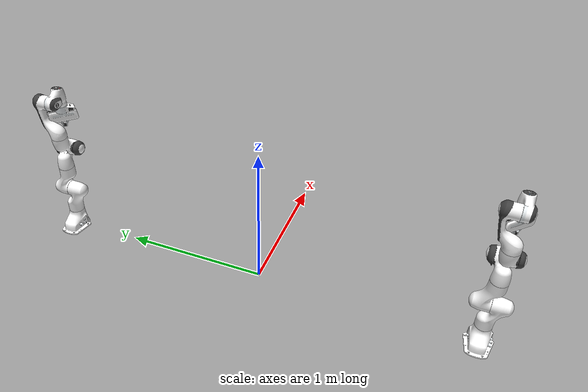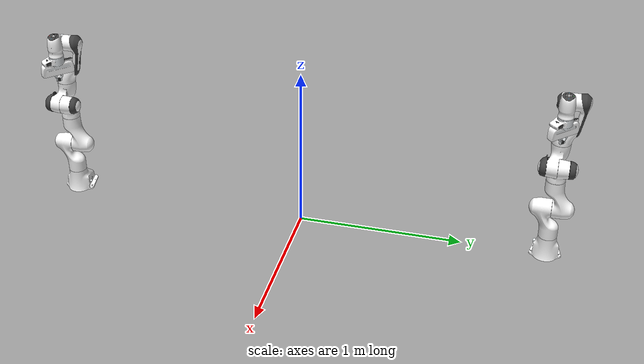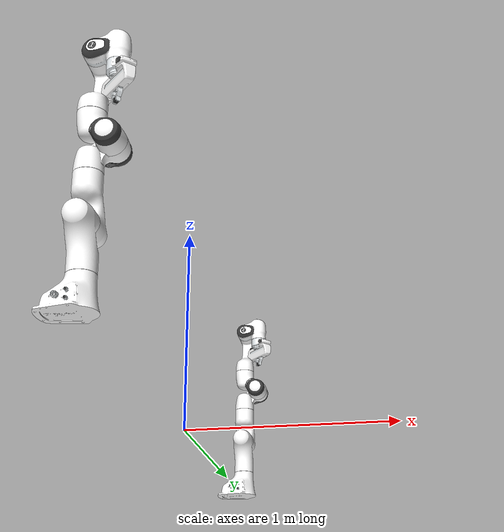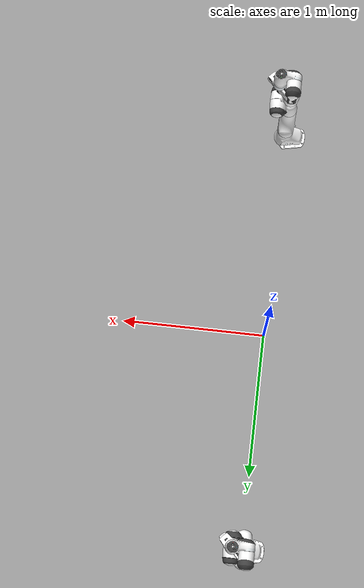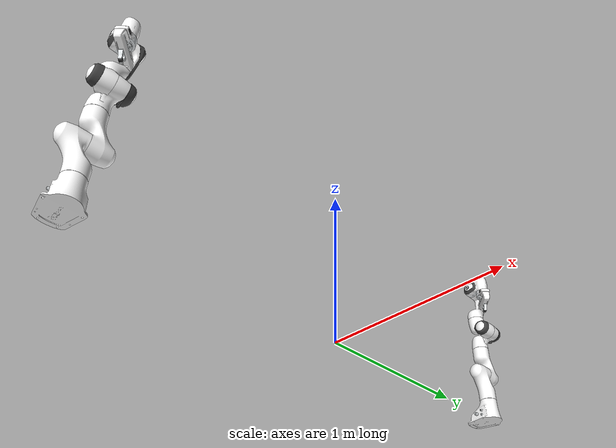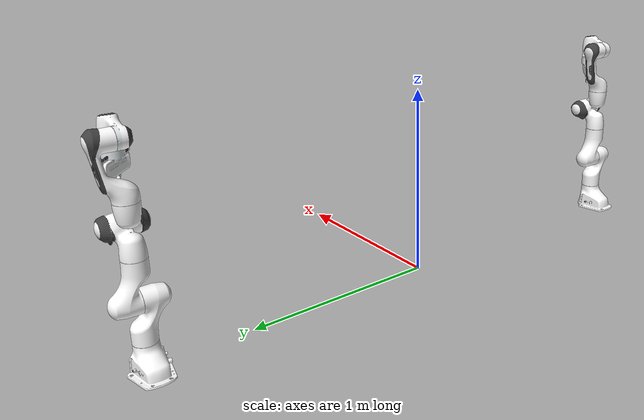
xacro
<?xml version="1.0"?>
<robot xmlns:xacro="http://www.ros.org/wiki/xacro" name="dual_arms">
    <xacro:arg name="left_initial_positions_file"
        default="$(find dual_arm_moveit_config)/config/left_initial_positions.yaml" />
    <xacro:arg name="right_initial_positions_file"
        default="$(find dual_arm_moveit_config)/config/right_initial_positions.yaml" />

    <link name="world"/>
    <!-- Import dual_arms urdf file -->
    <xacro:include filename="$(find dual_arm_moveit_config)/config/panda_macro.xacro" />

    <!-- Left arm -->
    <xacro:panda
        prefix="left_"
        parent="world">
        <origin xyz="0 -1.5 0" rpy="0 0 0" />
    </xacro:panda>

    <!-- Right arm -->
    <xacro:panda
        prefix="right_"
        parent="world">
        <origin xyz="0 1.5 0" rpy="0 0 0" />
    </xacro:panda>

    <!-- Import control_xacro -->
    <xacro:include filename="dual_arms.ros2_control.xacro" />

    <xacro:dual_arms_ros2_control name="FakeSystem" prefix="left_" initial_positions_file="$(arg left_initial_positions_file)"/>
    <xacro:dual_arms_ros2_control name="FakeSystem" prefix="right_" initial_positions_file="$(arg right_initial_positions_file)"/>

</robot>

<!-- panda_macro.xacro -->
<!-- |    This document was autogenerated by xacro from /opt/ros/kinetic/share/moveit_resources/panda_description/urdf/panda.urdf | -->
<!-- |    EDITING THIS FILE BY HAND IS NOT RECOMMENDED                                 | -->
<robot xmlns:xacro="http://www.ros.org/wiki/xacro">
    <xacro:macro name="panda" params="prefix parent *origin">

        <joint name="${prefix}base_joint" type="fixed">
            <xacro:insert_block name="origin" />
            <parent link="${parent}" />
            <child link="${prefix}panda_link0" />
        </joint>

        <link name="${prefix}panda_link0">
            <visual>
                <geometry>
                    <mesh filename="package://moveit_resources_panda_description/meshes/visual/link0.dae" />
                </geometry>
            </visual>
            <collision>
                <geometry>
                    <mesh filename="package://moveit_resources_panda_description/meshes/collision/link0.stl" />
                </geometry>
            </collision>
        </link>
        <link name="${prefix}panda_link1">
            <visual>
                <geometry>
                    <mesh filename="package://moveit_resources_panda_description/meshes/visual/link1.dae" />
                </geometry>
            </visual>
            <collision>
                <geometry>
                    <mesh filename="package://moveit_resources_panda_description/meshes/collision/link1.stl" />
                </geometry>
            </collision>
        </link>
        <joint name="${prefix}panda_joint1" type="revolute">
            <safety_controller k_position="100.0" k_velocity="40.0" soft_lower_limit="-2.8973" soft_upper_limit="2.8973" />
            <origin rpy="0 0 0" xyz="0 0 0.333" />
            <parent link="${prefix}panda_link0" />
            <child link="${prefix}panda_link1" />
            <axis xyz="0 0 1" />
            <limit effort="87" lower="-2.9671" upper="2.9671" velocity="2.3925" />
        </joint>
        <link name="${prefix}panda_link2">
            <visual>
                <geometry>
                    <mesh filename="package://moveit_resources_panda_description/meshes/visual/link2.dae" />
                </geometry>
            </visual>
            <collision>
                <geometry>
                    <mesh filename="package://moveit_resources_panda_description/meshes/collision/link2.stl" />
                </geometry>
            </collision>
        </link>
        <joint name="${prefix}panda_joint2" type="revolute">
            <safety_controller k_position="100.0" k_velocity="40.0" soft_lower_limit="-1.7628" soft_upper_limit="1.7628" />
            <origin rpy="-1.57079632679 0 0" xyz="0 0 0" />
            <parent link="${prefix}panda_link1" />
            <child link="${prefix}panda_link2" />
            <axis xyz="0 0 1" />
            <limit effort="87" lower="-1.8326" upper="1.8326" velocity="2.3925" />
        </joint>
        <link name="${prefix}panda_link3">
            <visual>
                <geometry>
                    <mesh filename="package://moveit_resources_panda_description/meshes/visual/link3.dae" />
                </geometry>
            </visual>
            <collision>
                <geometry>
                    <mesh filename="package://moveit_resources_panda_description/meshes/collision/link3.stl" />
                </geometry>
            </collision>
        </link>
        <joint name="${prefix}panda_joint3" type="revolute">
            <safety_controller k_position="100.0" k_velocity="40.0" soft_lower_limit="-2.8973" soft_upper_limit="2.8973" />
            <origin rpy="1.57079632679 0 0" xyz="0 -0.316 0" />
            <parent link="${prefix}panda_link2" />
            <child link="${prefix}panda_link3" />
            <axis xyz="0 0 1" />
            <limit effort="87" lower="-2.9671" upper="2.9671" velocity="2.3925" />
        </joint>
        <link name="${prefix}panda_link4">
            <visual>
                <geometry>
                    <mesh filename="package://moveit_resources_panda_description/meshes/visual/link4.dae" />
                </geometry>
            </visual>
            <collision>
                <geometry>
                    <mesh filename="package://moveit_resources_panda_description/meshes/collision/link4.stl" />
                </geometry>
            </collision>
        </link>
        <joint name="${prefix}panda_joint4" type="revolute">
            <safety_controller k_position="100.0" k_velocity="40.0" soft_lower_limit="-3.0718" soft_upper_limit="0.0175" />
            <origin rpy="1.57079632679 0 0" xyz="0.0825 0 0" />
            <parent link="${prefix}panda_link3" />
            <child link="${prefix}panda_link4" />
            <axis xyz="0 0 1" />
            <limit effort="87" lower="-3.1416" upper="0.0873" velocity="2.3925" />
        </joint>
        <link name="${prefix}panda_link5">
            <visual>
                <geometry>
                    <mesh filename="package://moveit_resources_panda_description/meshes/visual/link5.dae" />
                </geometry>
            </visual>
            <collision>
                <geometry>
                    <mesh filename="package://moveit_resources_panda_description/meshes/collision/link5.stl" />
                </geometry>
            </collision>
        </link>
        <joint name="${prefix}panda_joint5" type="revolute">
            <safety_controller k_position="100.0" k_velocity="40.0" soft_lower_limit="-2.8973" soft_upper_limit="2.8973" />
            <origin rpy="-1.57079632679 0 0" xyz="-0.0825 0.384 0" />
            <parent link="${prefix}panda_link4" />
            <child link="${prefix}panda_link5" />
            <axis xyz="0 0 1" />
            <limit effort="12" lower="-2.9671" upper="2.9671" velocity="2.8710" />
        </joint>
        <link name="${prefix}panda_link6">
            <visual>
                <geometry>
                    <mesh filename="package://moveit_resources_panda_description/meshes/visual/link6.dae" />
                </geometry>
            </visual>
            <collision>
                <geometry>
                    <mesh filename="package://moveit_resources_panda_description/meshes/collision/link6.stl" />
                </geometry>
            </collision>
        </link>
        <joint name="${prefix}panda_joint6" type="revolute">
            <safety_controller k_position="100.0" k_velocity="40.0" soft_lower_limit="-0.0175" soft_upper_limit="3.7525" />
            <origin rpy="1.57079632679 0 0" xyz="0 0 0" />
            <parent link="${prefix}panda_link5" />
            <child link="${prefix}panda_link6" />
            <axis xyz="0 0 1" />
            <limit effort="12" lower="-0.0873" upper="3.8223" velocity="2.8710" />
        </joint>
        <link name="${prefix}panda_link7">
            <visual>
                <geometry>
                    <mesh filename="package://moveit_resources_panda_description/meshes/visual/link7.dae" />
                </geometry>
            </visual>
            <collision>
                <geometry>
                    <mesh filename="package://moveit_resources_panda_description/meshes/collision/link7.stl" />
                </geometry>
            </collision>
        </link>
        <joint name="${prefix}panda_joint7" type="revolute">
            <safety_controller k_position="100.0" k_velocity="40.0" soft_lower_limit="-2.8973" soft_upper_limit="2.8973" />
            <origin rpy="1.57079632679 0 0" xyz="0.088 0 0" />
            <parent link="${prefix}panda_link6" />
            <child link="${prefix}panda_link7" />
            <axis xyz="0 0 1" />
            <limit effort="12" lower="-2.9671" upper="2.9671" velocity="2.8710" />
        </joint>
        <link name="${prefix}panda_link8" />
        <joint name="${prefix}panda_joint8" type="fixed">
            <origin rpy="0 0 0" xyz="0 0 0.107" />
            <parent link="${prefix}panda_link7" />
            <child link="${prefix}panda_link8" />
            <axis xyz="0 0 0" />
        </joint>
        <joint name="${prefix}panda_hand_joint" type="fixed">
            <parent link="${prefix}panda_link8" />
            <child link="${prefix}panda_hand" />
            <origin rpy="0 0 -0.785398163397" xyz="0 0 0" />
        </joint>
        <link name="${prefix}panda_hand">
            <visual>
                <geometry>
                    <mesh filename="package://moveit_resources_panda_description/meshes/visual/hand.dae" />
                </geometry>
            </visual>
            <collision>
                <geometry>
                    <mesh filename="package://moveit_resources_panda_description/meshes/collision/hand.stl" />
                </geometry>
            </collision>
        </link>
        <link name="${prefix}panda_leftfinger">
            <visual>
                <geometry>
                    <mesh filename="package://moveit_resources_panda_description/meshes/visual/finger.dae" />
                </geometry>
            </visual>
            <collision>
                <geometry>
                    <mesh filename="package://moveit_resources_panda_description/meshes/collision/finger.stl" />
                </geometry>
            </collision>
        </link>
        <link name="${prefix}panda_rightfinger">
            <visual>
                <origin rpy="0 0 3.14159265359" xyz="0 0 0" />
                <geometry>
                    <mesh filename="package://moveit_resources_panda_description/meshes/visual/finger.dae" />
                </geometry>
            </visual>
            <collision>
                <origin rpy="0 0 3.14159265359" xyz="0 0 0" />
                <geometry>
                    <mesh filename="package://moveit_resources_panda_description/meshes/collision/finger.stl" />
                </geometry>
            </collision>
        </link>
        <joint name="${prefix}panda_finger_joint1" type="prismatic">
            <parent link="${prefix}panda_hand" />
            <child link="${prefix}panda_leftfinger" />
            <origin rpy="0 0 0" xyz="0 0 0.0584" />
            <axis xyz="0 1 0" />
            <limit effort="20" lower="0.0" upper="0.04" velocity="0.2" />
        </joint>
        <joint name="${prefix}panda_finger_joint2" type="prismatic">
            <parent link="${prefix}panda_hand" />
            <child link="${prefix}panda_rightfinger" />
            <origin rpy="0 0 0" xyz="0 0 0.0584" />
            <axis xyz="0 -1 0" />
            <limit effort="20" lower="0.0" upper="0.04" velocity="0.2" />
            <mimic joint="${prefix}panda_finger_joint1" />
        </joint>
    </xacro:macro>
</robot>
